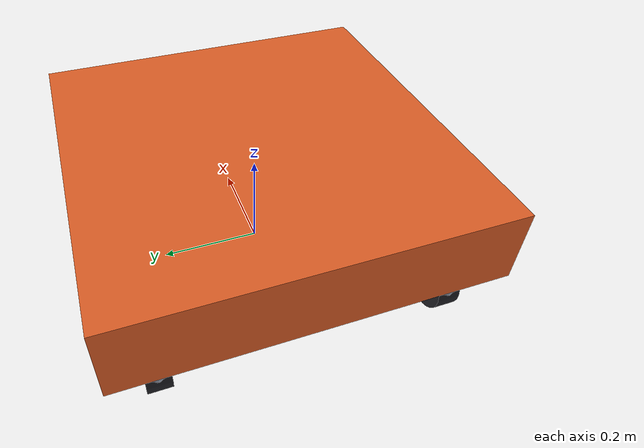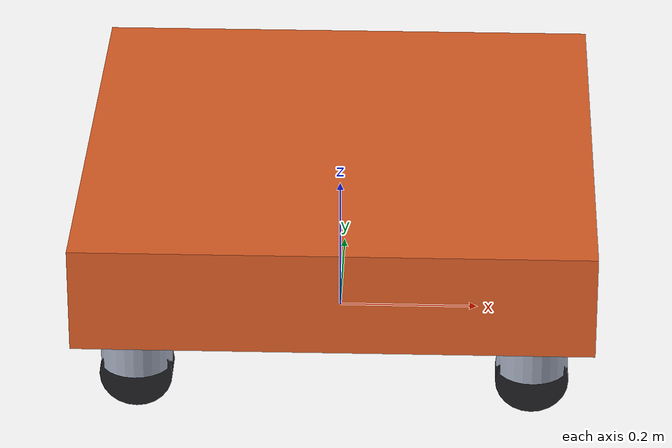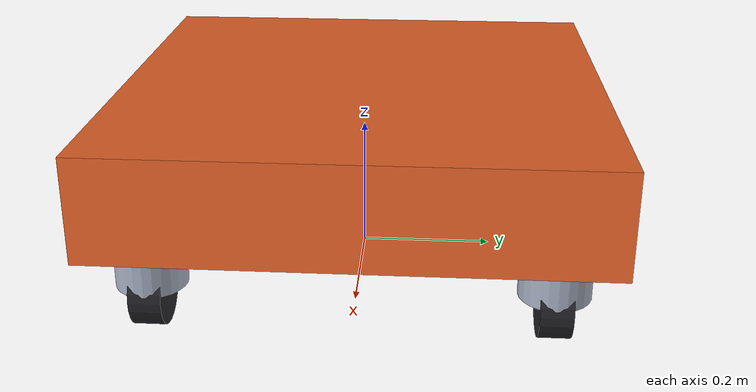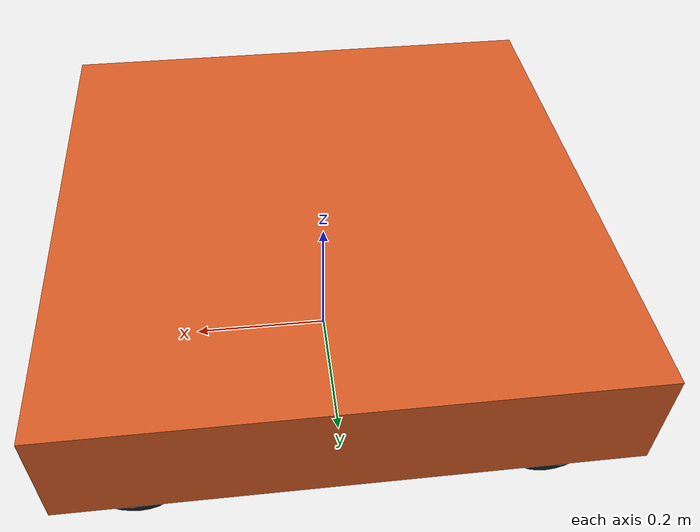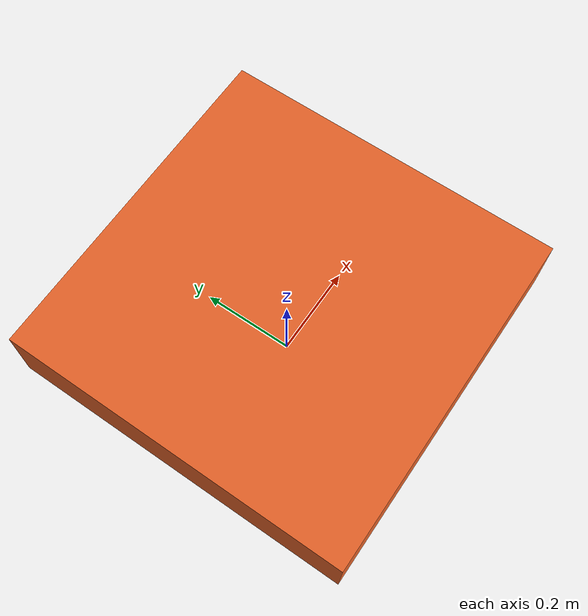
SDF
<sdf version="1.11">
 <world name="mars">
  <physics name="250hz" type="ignored">
   <max_step_size>0.004</max_step_size>
   <real_time_factor>0</real_time_factor>
  </physics>
  <plugin filename="gz-sim-physics-system" name="gz::sim::systems::Physics"/>
  <plugin filename="gz-sim-user-commands-system" name="gz::sim::systems::UserCommands"/>
  <plugin filename="gz-sim-scene-broadcaster-system" name="gz::sim::systems::SceneBroadcaster"/>
  <gravity>0 0 -9.8</gravity>
  <light type="directional" name="sun">
   <pose>0 0 10 0 0 0</pose>
   <diffuse>0.8 0.8 0.8 1</diffuse>
   <direction>-0.5 0.1 -0.9</direction>
  </light>
  <model name="ground_plane">
   <static>true</static>
   <link name="link">
    <collision name="collision">
     <geometry><plane><normal>0 0 1</normal></plane></geometry>
     <surface><friction><ode><mu>0.9</mu><mu2>0.9</mu2></ode></friction></surface>
    </collision>
   </link>
  </model>
  <model name="robot">
   <link name="chassis">
    <pose>0 0 0.2 0 0 0</pose>
    <inertial>
     <mass>45.0</mass>
     <inertia><ixx>2.0284</ixx><iyy>2.0284</iyy><izz>3.8880</izz><ixy>0</ixy><ixz>0</ixz><iyz>0</iyz></inertia>
    </inertial>
    <collision name="collision"><geometry><box><size>0.72 0.72 0.15</size></box></geometry></collision>
    <visual name="visual">
     <geometry><box><size>0.72 0.72 0.15</size></box></geometry>
     <material>
      <ambient>0.35 0.15 0.06 1</ambient>
      <diffuse>0.91 0.39 0.16 1</diffuse>
      <specular>0.3 0.3 0.3 1</specular>
     </material>
    </visual>
   </link>
   <link name="fl_steer">
    <pose>0.2757 0.2757 0.12 0 0 0</pose>
    <inertial>
     <mass>1.2</mass>
     <inertia>
      <ixx>0.015346</ixx>
      <iyy>0.015346</iyy>
      <izz>0.030091</izz>
      <ixy>0</ixy>
      <ixz>0</ixz>
      <iyz>0</iyz>
     </inertia>
    </inertial>
    <visual name="visual">
     <geometry><cylinder><radius>0.05</radius><length>0.12</length></cylinder></geometry>
     <material><ambient>0.25 0.26 0.3 1</ambient><diffuse>0.62 0.65 0.72 1</diffuse></material>
    </visual>
   </link>
   <link name="fl_wheel">
    <pose>0.2757 0.2757 0.0508 -1.5707963 0 0</pose>
    <inertial>
     <mass>0.8</mass>
     <inertia>
      <ixx>0.001122</ixx>
      <iyy>0.001122</iyy>
      <izz>0.002200</izz>
      <ixy>0</ixy>
      <ixz>0</ixz>
      <iyz>0</iyz>
     </inertia>
    </inertial>
    <collision name="collision">
     <geometry><cylinder><radius>0.0508</radius><length>0.045</length></cylinder></geometry>
     <surface><friction><ode><mu>1.1</mu><mu2>1.1</mu2></ode></friction></surface>
    </collision>
    <visual name="visual">
     <geometry><cylinder><radius>0.0508</radius><length>0.045</length></cylinder></geometry>
     <material><ambient>0.05 0.05 0.06 1</ambient><diffuse>0.13 0.13 0.15 1</diffuse></material>
    </visual>
   </link>
   <joint name="fl_steer_joint" type="revolute">
    <parent>chassis</parent>
    <child>fl_steer</child>
    <axis>
     <xyz>0 0 1</xyz>
     <dynamics><damping>1.5</damping></dynamics>
     <limit><lower>-1e16</lower><upper>1e16</upper></limit>
    </axis>
   </joint>
   <joint name="fl_drive_joint" type="revolute">
    <parent>fl_steer</parent>
    <child>fl_wheel</child>
    <axis>
     <xyz>0 0 1</xyz>
     <dynamics><damping>0.02</damping></dynamics>
     <limit><lower>-1e16</lower><upper>1e16</upper></limit>
    </axis>
   </joint>
   <link name="fr_steer">
    <pose>0.2757 -0.2757 0.12 0 0 0</pose>
    <inertial>
     <mass>1.2</mass>
     <inertia>
      <ixx>0.015346</ixx>
      <iyy>0.015346</iyy>
      <izz>0.030091</izz>
      <ixy>0</ixy>
      <ixz>0</ixz>
      <iyz>0</iyz>
     </inertia>
    </inertial>
    <visual name="visual">
     <geometry><cylinder><radius>0.05</radius><length>0.12</length></cylinder></geometry>
     <material><ambient>0.25 0.26 0.3 1</ambient><diffuse>0.62 0.65 0.72 1</diffuse></material>
    </visual>
   </link>
   <link name="fr_wheel">
    <pose>0.2757 -0.2757 0.0508 -1.5707963 0 0</pose>
    <inertial>
     <mass>0.8</mass>
     <inertia>
      <ixx>0.001122</ixx>
      <iyy>0.001122</iyy>
      <izz>0.002200</izz>
      <ixy>0</ixy>
      <ixz>0</ixz>
      <iyz>0</iyz>
     </inertia>
    </inertial>
    <collision name="collision">
     <geometry><cylinder><radius>0.0508</radius><length>0.045</length></cylinder></geometry>
     <surface><friction><ode><mu>1.1</mu><mu2>1.1</mu2></ode></friction></surface>
    </collision>
    <visual name="visual">
     <geometry><cylinder><radius>0.0508</radius><length>0.045</length></cylinder></geometry>
     <material><ambient>0.05 0.05 0.06 1</ambient><diffuse>0.13 0.13 0.15 1</diffuse></material>
    </visual>
   </link>
   <joint name="fr_steer_joint" type="revolute">
    <parent>chassis</parent>
    <child>fr_steer</child>
    <axis>
     <xyz>0 0 1</xyz>
     <dynamics><damping>1.5</damping></dynamics>
     <limit><lower>-1e16</lower><upper>1e16</upper></limit>
    </axis>
   </joint>
   <joint name="fr_drive_joint" type="revolute">
    <parent>fr_steer</parent>
    <child>fr_wheel</child>
    <axis>
     <xyz>0 0 1</xyz>
     <dynamics><damping>0.02</damping></dynamics>
     <limit><lower>-1e16</lower><upper>1e16</upper></limit>
    </axis>
   </joint>
   <link name="bl_steer">
    <pose>-0.2757 0.2757 0.12 0 0 0</pose>
    <inertial>
     <mass>1.2</mass>
     <inertia>
      <ixx>0.015346</ixx>
      <iyy>0.015346</iyy>
      <izz>0.030091</izz>
      <ixy>0</ixy>
      <ixz>0</ixz>
      <iyz>0</iyz>
     </inertia>
    </inertial>
    <visual name="visual">
     <geometry><cylinder><radius>0.05</radius><length>0.12</length></cylinder></geometry>
     <material><ambient>0.25 0.26 0.3 1</ambient><diffuse>0.62 0.65 0.72 1</diffuse></material>
    </visual>
   </link>
   <link name="bl_wheel">
    <pose>-0.2757 0.2757 0.0508 -1.5707963 0 0</pose>
    <inertial>
     <mass>0.8</mass>
     <inertia>
      <ixx>0.001122</ixx>
      <iyy>0.001122</iyy>
      <izz>0.002200</izz>
      <ixy>0</ixy>
      <ixz>0</ixz>
      <iyz>0</iyz>
     </inertia>
    </inertial>
    <collision name="collision">
     <geometry><cylinder><radius>0.0508</radius><length>0.045</length></cylinder></geometry>
     <surface><friction><ode><mu>1.1</mu><mu2>1.1</mu2></ode></friction></surface>
    </collision>
    <visual name="visual">
     <geometry><cylinder><radius>0.0508</radius><length>0.045</length></cylinder></geometry>
     <material><ambient>0.05 0.05 0.06 1</ambient><diffuse>0.13 0.13 0.15 1</diffuse></material>
    </visual>
   </link>
   <joint name="bl_steer_joint" type="revolute">
    <parent>chassis</parent>
    <child>bl_steer</child>
    <axis>
     <xyz>0 0 1</xyz>
     <dynamics><damping>1.5</damping></dynamics>
     <limit><lower>-1e16</lower><upper>1e16</upper></limit>
    </axis>
   </joint>
   <joint name="bl_drive_joint" type="revolute">
    <parent>bl_steer</parent>
    <child>bl_wheel</child>
    <axis>
     <xyz>0 0 1</xyz>
     <dynamics><damping>0.02</damping></dynamics>
     <limit><lower>-1e16</lower><upper>1e16</upper></limit>
    </axis>
   </joint>
   <link name="br_steer">
    <pose>-0.2757 -0.2757 0.12 0 0 0</pose>
    <inertial>
     <mass>1.2</mass>
     <inertia>
      <ixx>0.015346</ixx>
      <iyy>0.015346</iyy>
      <izz>0.030091</izz>
      <ixy>0</ixy>
      <ixz>0</ixz>
      <iyz>0</iyz>
     </inertia>
    </inertial>
    <visual name="visual">
     <geometry><cylinder><radius>0.05</radius><length>0.12</length></cylinder></geometry>
     <material><ambient>0.25 0.26 0.3 1</ambient><diffuse>0.62 0.65 0.72 1</diffuse></material>
    </visual>
   </link>
   <link name="br_wheel">
    <pose>-0.2757 -0.2757 0.0508 -1.5707963 0 0</pose>
    <inertial>
     <mass>0.8</mass>
     <inertia>
      <ixx>0.001122</ixx>
      <iyy>0.001122</iyy>
      <izz>0.002200</izz>
      <ixy>0</ixy>
      <ixz>0</ixz>
      <iyz>0</iyz>
     </inertia>
    </inertial>
    <collision name="collision">
     <geometry><cylinder><radius>0.0508</radius><length>0.045</length></cylinder></geometry>
     <surface><friction><ode><mu>1.1</mu><mu2>1.1</mu2></ode></friction></surface>
    </collision>
    <visual name="visual">
     <geometry><cylinder><radius>0.0508</radius><length>0.045</length></cylinder></geometry>
     <material><ambient>0.05 0.05 0.06 1</ambient><diffuse>0.13 0.13 0.15 1</diffuse></material>
    </visual>
   </link>
   <joint name="br_steer_joint" type="revolute">
    <parent>chassis</parent>
    <child>br_steer</child>
    <axis>
     <xyz>0 0 1</xyz>
     <dynamics><damping>1.5</damping></dynamics>
     <limit><lower>-1e16</lower><upper>1e16</upper></limit>
    </axis>
   </joint>
   <joint name="br_drive_joint" type="revolute">
    <parent>br_steer</parent>
    <child>br_wheel</child>
    <axis>
     <xyz>0 0 1</xyz>
     <dynamics><damping>0.02</damping></dynamics>
     <limit><lower>-1e16</lower><upper>1e16</upper></limit>
    </axis>
   </joint>
   <plugin filename="MarsLink" name="mars::MarsLink">
    <actuator joint="fl_drive_joint" motor="kraken_x60" gearRatio="5.2734375"/>
    <actuator joint="fl_steer_joint" motor="kraken_x60" gearRatio="26.09090909090909" control="position" kp="0.08" kd="0.012"/>
    <actuator joint="fr_drive_joint" motor="kraken_x60" gearRatio="5.2734375"/>
    <actuator joint="fr_steer_joint" motor="kraken_x60" gearRatio="26.09090909090909" control="position" kp="0.08" kd="0.012"/>
    <actuator joint="bl_drive_joint" motor="kraken_x60" gearRatio="5.2734375"/>
    <actuator joint="bl_steer_joint" motor="kraken_x60" gearRatio="26.09090909090909" control="position" kp="0.08" kd="0.012"/>
    <actuator joint="br_drive_joint" motor="kraken_x60" gearRatio="5.2734375"/>
    <actuator joint="br_steer_joint" motor="kraken_x60" gearRatio="26.09090909090909" control="position" kp="0.08" kd="0.012"/>
   </plugin>
  </model>
 </world>
</sdf>
